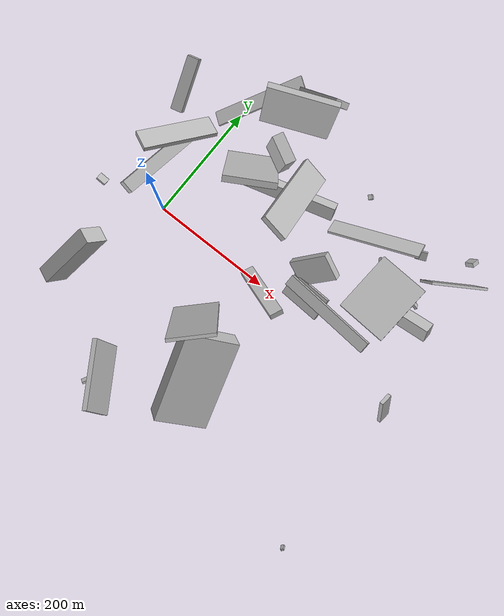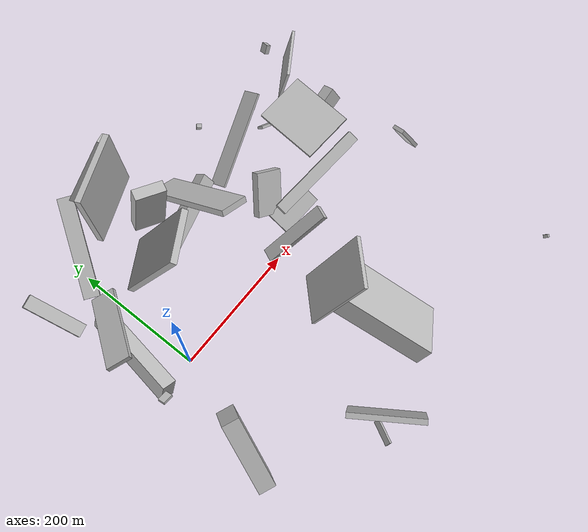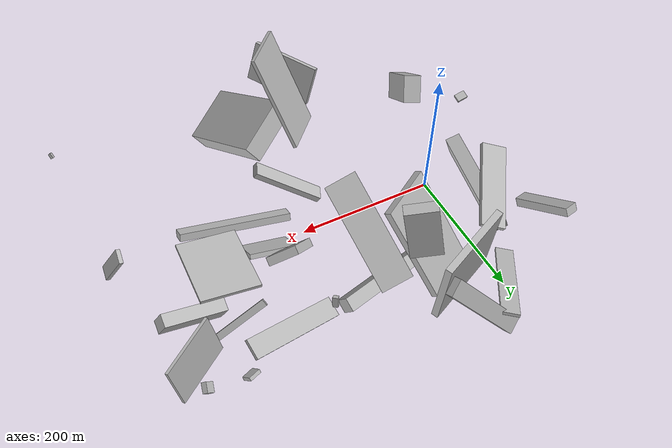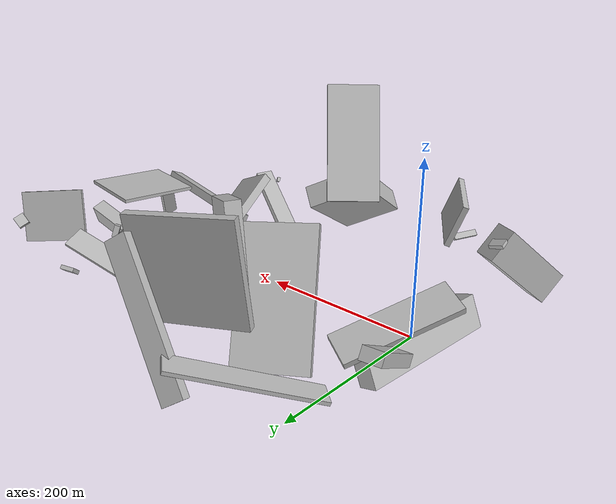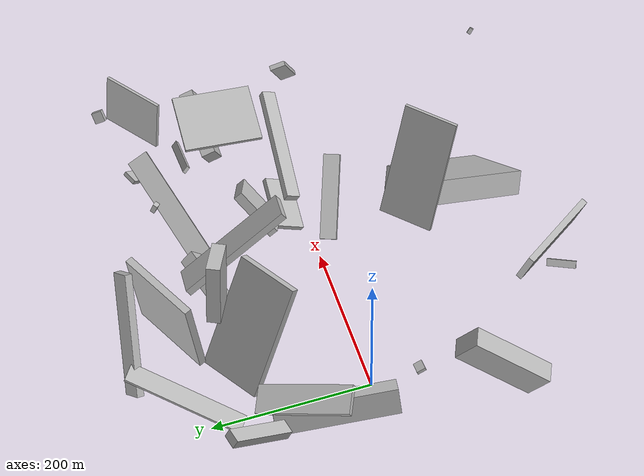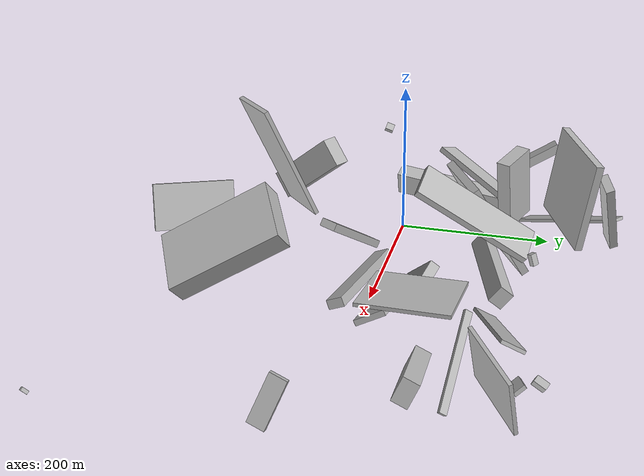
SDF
<sdf version="1.6">
 <world name="default">
  <scene>
   <sky><clouds><speed>12</speed></clouds></sky>
   <ambient>0.4 0.4 0.4 1</ambient>
   <background>0.7 0.7 0.7 1</background>
   <shadows>1</shadows>
  </scene>
  <gravity>0 0 -9.8066</gravity>
  <magnetic_field>6e-06 2.3e-05 -4.2e-05</magnetic_field>
  <physics default="0" name="default_physics" type="ode">
   <ode>
    <solver>
     <type>quick</type>
     <iters>10</iters>
     <sor>1.0</sor>
     <use_dynamic_moi_rescaling>0</use_dynamic_moi_rescaling>
    </solver>
    <constraints>
     <cfm>0</cfm>
     <erp>0.2</erp>
     <contact_max_correcting_vel>100</contact_max_correcting_vel>
     <contact_surface_layer>0.001</contact_surface_layer>
    </constraints>
   </ode>
   <max_step_size>0.004</max_step_size>
   <real_time_factor>1</real_time_factor>
   <real_time_update_rate>250</real_time_update_rate>
  </physics>
  <light name="sun" type="directional">
   <pose>0 0 10 0 0 0</pose>
   <diffuse>0.8 0.8 0.8 1</diffuse>
   <specular>0.2 0.2 0.2 1</specular>
   <attenuation>
    <range>1000</range>
    <constant>0.9</constant>
    <linear>0.01</linear>
    <quadratic>0.001</quadratic>
   </attenuation>
   <direction>-0.5 0.1 -0.9</direction>
  </light>
  <model name="building_1">
   <static>0</static>
   <pose>154.57961220058755 -94.06725495758079 95.15342678860934 -0.02446657024979351 -0.40464399634912657 2.36842992189644</pose>
   <link name="link">
    <gravity>0</gravity>
    <pose>0 0 75.0 0 0 0</pose>
    <collision name="collision"><geometry><box><size>5 67 150</size></box></geometry></collision>
    <visual name="visual">
     <cast_shadows>0</cast_shadows>
     <geometry><box><size>5 67 150</size></box></geometry>
     <material>
      <script>
       <uri>model://HANNAS_wall/materials/scripts</uri>
       <uri>model://HANNAS_wall/materials/textures</uri>
       <name>vrc/HANNAS_wall</name>
      </script>
     </material>
    </visual>
   </link>
  </model>
  <model name="building_2">
   <static>0</static>
   <pose>47.32997546945609 103.86689603071797 68.84116946585718 -1.6716091815767018 -1.0135630304492529 -0.9503787858345434</pose>
   <link name="link">
    <gravity>0</gravity>
    <pose>0 0 41.0 0 0 0</pose>
    <collision name="collision"><geometry><box><size>150 10 82</size></box></geometry></collision>
    <visual name="visual">
     <cast_shadows>0</cast_shadows>
     <geometry><box><size>150 10 82</size></box></geometry>
     <material>
      <script>
       <uri>model://HANNAS_wall/materials/scripts</uri>
       <uri>model://HANNAS_wall/materials/textures</uri>
       <name>vrc/HANNAS_wall</name>
      </script>
     </material>
    </visual>
   </link>
  </model>
  <model name="building_3">
   <static>0</static>
   <pose>10.635347362596743 231.09175881621837 46.46821976635276 1.346070181141134 1.2157926899558067 0.7201144404870884</pose>
   <link name="link">
    <gravity>0</gravity>
    <pose>0 0 12.0 0 0 0</pose>
    <collision name="collision"><geometry><box><size>4 150 24</size></box></geometry></collision>
    <visual name="visual">
     <cast_shadows>0</cast_shadows>
     <geometry><box><size>4 150 24</size></box></geometry>
     <material>
      <script>
       <uri>model://HANNAS_wall/materials/scripts</uri>
       <uri>model://HANNAS_wall/materials/textures</uri>
       <name>vrc/HANNAS_wall</name>
      </script>
     </material>
    </visual>
   </link>
  </model>
  <model name="building_4">
   <static>0</static>
   <pose>362.4458641789554 88.95825450980507 36.82298995859188 -0.982253996204171 1.091995442060551 -0.992013604563971</pose>
   <link name="link">
    <gravity>0</gravity>
    <pose>0 0 44.0 0 0 0</pose>
    <collision name="collision"><geometry><box><size>27 18 88</size></box></geometry></collision>
    <visual name="visual">
     <cast_shadows>0</cast_shadows>
     <geometry><box><size>27 18 88</size></box></geometry>
     <material>
      <script>
       <uri>model://HANNAS_wall/materials/scripts</uri>
       <uri>model://HANNAS_wall/materials/textures</uri>
       <name>vrc/HANNAS_wall</name>
      </script>
     </material>
    </visual>
   </link>
  </model>
  <model name="building_5">
   <static>0</static>
   <pose>176.34413313373253 -3.2184410953064457 65.48989069351684 0.1260634206152563 -0.9654327686301827 2.6182376185952894</pose>
   <link name="link">
    <gravity>0</gravity>
    <pose>0 0 51.5 0 0 0</pose>
    <collision name="collision"><geometry><box><size>9 20 103</size></box></geometry></collision>
    <visual name="visual">
     <cast_shadows>0</cast_shadows>
     <geometry><box><size>9 20 103</size></box></geometry>
     <material>
      <script>
       <uri>model://HANNAS_wall/materials/scripts</uri>
       <uri>model://HANNAS_wall/materials/textures</uri>
       <name>vrc/HANNAS_wall</name>
      </script>
     </material>
    </visual>
   </link>
  </model>
  <model name="building_6">
   <static>0</static>
   <pose>270.9579200867172 56.55891604592384 48.19919294720236 0.9200672776716683 -0.6340914589169215 -1.5207445167480622</pose>
   <link name="link">
    <gravity>0</gravity>
    <pose>0 0 21.5 0 0 0</pose>
    <collision name="collision"><geometry><box><size>12 66 43</size></box></geometry></collision>
    <visual name="visual">
     <cast_shadows>0</cast_shadows>
     <geometry><box><size>12 66 43</size></box></geometry>
     <material>
      <script>
       <uri>model://HANNAS_wall/materials/scripts</uri>
       <uri>model://HANNAS_wall/materials/textures</uri>
       <name>vrc/HANNAS_wall</name>
      </script>
     </material>
    </visual>
   </link>
  </model>
  <model name="building_7">
   <static>0</static>
   <pose>223.86409613722617 -181.42745742873035 75.65368777284878 2.587069124219425 -0.43186653503704486 -2.631040540996471</pose>
   <link name="link">
    <gravity>0</gravity>
    <pose>0 0 15.0 0 0 0</pose>
    <collision name="collision"><geometry><box><size>83 150 30</size></box></geometry></collision>
    <visual name="visual">
     <cast_shadows>0</cast_shadows>
     <geometry><box><size>83 150 30</size></box></geometry>
     <material>
      <script>
       <uri>model://HANNAS_wall/materials/scripts</uri>
       <uri>model://HANNAS_wall/materials/textures</uri>
       <name>vrc/HANNAS_wall</name>
      </script>
     </material>
    </visual>
   </link>
  </model>
  <model name="building_8">
   <static>0</static>
   <pose>74.04023205447574 -220.36553772407336 45.33069076595045 -1.3217290832869124 -1.230883910111086 -2.8038099439291084</pose>
   <link name="link">
    <gravity>0</gravity>
    <pose>0 0 53.5 0 0 0</pose>
    <collision name="collision"><geometry><box><size>62 8 107</size></box></geometry></collision>
    <visual name="visual">
     <cast_shadows>0</cast_shadows>
     <geometry><box><size>62 8 107</size></box></geometry>
     <material>
      <script>
       <uri>model://HANNAS_wall/materials/scripts</uri>
       <uri>model://HANNAS_wall/materials/textures</uri>
       <name>vrc/HANNAS_wall</name>
      </script>
     </material>
    </visual>
   </link>
  </model>
  <model name="building_9">
   <static>0</static>
   <pose>-75.65392492283846 -35.22446271739301 120.21720723079696 1.8265433209804183 0.3369510693594737 1.6465286733468518</pose>
   <link name="link">
    <gravity>0</gravity>
    <pose>0 0 7.5 0 0 0</pose>
    <collision name="collision"><geometry><box><size>11 4 15</size></box></geometry></collision>
    <visual name="visual">
     <cast_shadows>0</cast_shadows>
     <geometry><box><size>11 4 15</size></box></geometry>
     <material>
      <script>
       <uri>model://HANNAS_wall/materials/scripts</uri>
       <uri>model://HANNAS_wall/materials/textures</uri>
       <name>vrc/HANNAS_wall</name>
      </script>
     </material>
    </visual>
   </link>
  </model>
  <model name="building_10">
   <static>0</static>
   <pose>-54.99600769533757 -15.444318368351624 47.92513267574091 -1.7833674923705325 -1.2021916366851797 0.05061131252049151</pose>
   <link name="link">
    <gravity>0</gravity>
    <pose>0 0 75.0 0 0 0</pose>
    <collision name="collision"><geometry><box><size>35 21 150</size></box></geometry></collision>
    <visual name="visual">
     <cast_shadows>0</cast_shadows>
     <geometry><box><size>35 21 150</size></box></geometry>
     <material>
      <script>
       <uri>model://HANNAS_wall/materials/scripts</uri>
       <uri>model://HANNAS_wall/materials/textures</uri>
       <name>vrc/HANNAS_wall</name>
      </script>
     </material>
    </visual>
   </link>
  </model>
  <model name="building_11">
   <static>0</static>
   <pose>105.92758071751587 158.71607542926768 83.87657966501988 -0.18217599819959662 -0.009889995388662063 -2.026763269211537</pose>
   <link name="link">
    <gravity>0</gravity>
    <pose>0 0 43.5 0 0 0</pose>
    <collision name="collision"><geometry><box><size>17 44 87</size></box></geometry></collision>
    <visual name="visual">
     <cast_shadows>0</cast_shadows>
     <geometry><box><size>17 44 87</size></box></geometry>
     <material>
      <script>
       <uri>model://HANNAS_wall/materials/scripts</uri>
       <uri>model://HANNAS_wall/materials/textures</uri>
       <name>vrc/HANNAS_wall</name>
      </script>
     </material>
    </visual>
   </link>
  </model>
  <model name="building_12">
   <static>0</static>
   <pose>295.7787389260978 174.1886690373078 38.582482878908614 0.6634058859900273 0.9884166976235981 -0.6909647135999201</pose>
   <link name="link">
    <gravity>0</gravity>
    <pose>0 0 13.5 0 0 0</pose>
    <collision name="collision"><geometry><box><size>4 150 27</size></box></geometry></collision>
    <visual name="visual">
     <cast_shadows>0</cast_shadows>
     <geometry><box><size>4 150 27</size></box></geometry>
     <material>
      <script>
       <uri>model://HANNAS_wall/materials/scripts</uri>
       <uri>model://HANNAS_wall/materials/textures</uri>
       <name>vrc/HANNAS_wall</name>
      </script>
     </material>
    </visual>
   </link>
  </model>
  <model name="building_13">
   <static>0</static>
   <pose>366.16535005793054 131.08609397074574 43.080912206290385 -0.8010710364347841 -0.6076892945352024 3.0363692820891086</pose>
   <link name="link">
    <gravity>0</gravity>
    <pose>0 0 4.5 0 0 0</pose>
    <collision name="collision"><geometry><box><size>111 4 9</size></box></geometry></collision>
    <visual name="visual">
     <cast_shadows>0</cast_shadows>
     <geometry><box><size>111 4 9</size></box></geometry>
     <material>
      <script>
       <uri>model://HANNAS_wall/materials/scripts</uri>
       <uri>model://HANNAS_wall/materials/textures</uri>
       <name>vrc/HANNAS_wall</name>
      </script>
     </material>
    </visual>
   </link>
  </model>
  <model name="building_14">
   <static>0</static>
   <pose>-67.50403974645799 127.56258229965326 63.61306456163384 1.052325645523091 0.06382143718046954 -2.914746072005602</pose>
   <link name="link">
    <gravity>0</gravity>
    <pose>0 0 42.5 0 0 0</pose>
    <collision name="collision"><geometry><box><size>19 12 85</size></box></geometry></collision>
    <visual name="visual">
     <cast_shadows>0</cast_shadows>
     <geometry><box><size>19 12 85</size></box></geometry>
     <material>
      <script>
       <uri>model://HANNAS_wall/materials/scripts</uri>
       <uri>model://HANNAS_wall/materials/textures</uri>
       <name>vrc/HANNAS_wall</name>
      </script>
     </material>
    </visual>
   </link>
  </model>
  <model name="building_15">
   <static>0</static>
   <pose>356.7548277396835 32.75176331986692 110.67789941982055 -1.1123461763497537 1.4736643303599013 0.38721506882490486</pose>
   <link name="link">
    <gravity>0</gravity>
    <pose>0 0 48.0 0 0 0</pose>
    <collision name="collision"><geometry><box><size>4 78 96</size></box></geometry></collision>
    <visual name="visual">
     <cast_shadows>0</cast_shadows>
     <geometry><box><size>4 78 96</size></box></geometry>
     <material>
      <script>
       <uri>model://HANNAS_wall/materials/scripts</uri>
       <uri>model://HANNAS_wall/materials/textures</uri>
       <name>vrc/HANNAS_wall</name>
      </script>
     </material>
    </visual>
   </link>
  </model>
  <model name="building_16">
   <static>0</static>
   <pose>-33.929331767574865 -105.90240606239175 89.31243178054049 3.0341791712199595 0.8897729874423181 1.0850657515624578</pose>
   <link name="link">
    <gravity>0</gravity>
    <pose>0 0 57.5 0 0 0</pose>
    <collision name="collision"><geometry><box><size>40 25 115</size></box></geometry></collision>
    <visual name="visual">
     <cast_shadows>0</cast_shadows>
     <geometry><box><size>40 25 115</size></box></geometry>
     <material>
      <script>
       <uri>model://HANNAS_wall/materials/scripts</uri>
       <uri>model://HANNAS_wall/materials/textures</uri>
       <name>vrc/HANNAS_wall</name>
      </script>
     </material>
    </visual>
   </link>
  </model>
  <model name="building_17">
   <static>0</static>
   <pose>236.2922626241213 23.65769513475604 83.67330868072324 1.4135410534022972 -0.39732018668808344 1.5336293381358574</pose>
   <link name="link">
    <gravity>0</gravity>
    <pose>0 0 75.0 0 0 0</pose>
    <collision name="collision"><geometry><box><size>17 10 150</size></box></geometry></collision>
    <visual name="visual">
     <cast_shadows>0</cast_shadows>
     <geometry><box><size>17 10 150</size></box></geometry>
     <material>
      <script>
       <uri>model://HANNAS_wall/materials/scripts</uri>
       <uri>model://HANNAS_wall/materials/textures</uri>
       <name>vrc/HANNAS_wall</name>
      </script>
     </material>
    </visual>
   </link>
  </model>
  <model name="building_18">
   <static>0</static>
   <pose>257.601024251245 192.28747785295602 110.60520550562057 2.75249934375146 -1.219630342820748 -1.9514063213191681</pose>
   <link name="link">
    <gravity>0</gravity>
    <pose>0 0 3.0 0 0 0</pose>
    <collision name="collision"><geometry><box><size>13 7 6</size></box></geometry></collision>
    <visual name="visual">
     <cast_shadows>0</cast_shadows>
     <geometry><box><size>13 7 6</size></box></geometry>
     <material>
      <script>
       <uri>model://HANNAS_wall/materials/scripts</uri>
       <uri>model://HANNAS_wall/materials/textures</uri>
       <name>vrc/HANNAS_wall</name>
      </script>
     </material>
    </visual>
   </link>
  </model>
  <model name="building_19">
   <static>0</static>
   <pose>424.92771007322267 173.8510139699848 45.61504191616382 -0.10071201954878209 0.2132984209026408 -1.0149163323602364</pose>
   <link name="link">
    <gravity>0</gravity>
    <pose>0 0 32.0 0 0 0</pose>
    <collision name="collision"><geometry><box><size>4 83 64</size></box></geometry></collision>
    <visual name="visual">
     <cast_shadows>0</cast_shadows>
     <geometry><box><size>4 83 64</size></box></geometry>
     <material>
      <script>
       <uri>model://HANNAS_wall/materials/scripts</uri>
       <uri>model://HANNAS_wall/materials/textures</uri>
       <name>vrc/HANNAS_wall</name>
      </script>
     </material>
    </visual>
   </link>
  </model>
  <model name="building_20">
   <static>0</static>
   <pose>150.80096492865798 131.58782098397236 39.184296319205174 2.2543821092991494 0.044570122707706064 -2.882208267546488</pose>
   <link name="link">
    <gravity>0</gravity>
    <pose>0 0 9.5 0 0 0</pose>
    <collision name="collision"><geometry><box><size>150 22 19</size></box></geometry></collision>
    <visual name="visual">
     <cast_shadows>0</cast_shadows>
     <geometry><box><size>150 22 19</size></box></geometry>
     <material>
      <script>
       <uri>model://HANNAS_wall/materials/scripts</uri>
       <uri>model://HANNAS_wall/materials/textures</uri>
       <name>vrc/HANNAS_wall</name>
      </script>
     </material>
    </visual>
   </link>
  </model>
  <model name="building_21">
   <static>0</static>
   <pose>366.4520104790843 195.0837685666932 31.80399578788215 2.9564112333060644 0.903574751846823 1.8258579109825135</pose>
   <link name="link">
    <gravity>0</gravity>
    <pose>0 0 7.0 0 0 0</pose>
    <collision name="collision"><geometry><box><size>5 18 14</size></box></geometry></collision>
    <visual name="visual">
     <cast_shadows>0</cast_shadows>
     <geometry><box><size>5 18 14</size></box></geometry>
     <material>
      <script>
       <uri>model://HANNAS_wall/materials/scripts</uri>
       <uri>model://HANNAS_wall/materials/textures</uri>
       <name>vrc/HANNAS_wall</name>
      </script>
     </material>
    </visual>
   </link>
  </model>
  <model name="building_22">
   <static>0</static>
   <pose>-41.46687521770244 97.73700572682878 75.54238248957259 2.785484171996749 -0.3176292865097792 -0.444057361159669</pose>
   <link name="link">
    <gravity>0</gravity>
    <pose>0 0 3.5 0 0 0</pose>
    <collision name="collision"><geometry><box><size>36 121 7</size></box></geometry></collision>
    <visual name="visual">
     <cast_shadows>0</cast_shadows>
     <geometry><box><size>36 121 7</size></box></geometry>
     <material>
      <script>
       <uri>model://HANNAS_wall/materials/scripts</uri>
       <uri>model://HANNAS_wall/materials/textures</uri>
       <name>vrc/HANNAS_wall</name>
      </script>
     </material>
    </visual>
   </link>
  </model>
  <model name="building_23">
   <static>0</static>
   <pose>189.95080358765418 115.69298620285059 105.2694430779692 1.1199799746236234 -0.5578255939048958 -1.4351574481135438</pose>
   <link name="link">
    <gravity>0</gravity>
    <pose>0 0 22.0 0 0 0</pose>
    <collision name="collision"><geometry><box><size>150 9 44</size></box></geometry></collision>
    <visual name="visual">
     <cast_shadows>0</cast_shadows>
     <geometry><box><size>150 9 44</size></box></geometry>
     <material>
      <script>
       <uri>model://HANNAS_wall/materials/scripts</uri>
       <uri>model://HANNAS_wall/materials/textures</uri>
       <name>vrc/HANNAS_wall</name>
      </script>
     </material>
    </visual>
   </link>
  </model>
  <model name="building_24">
   <static>0</static>
   <pose>437.4987787950228 213.831748325637 86.24141512698007 -2.524796856865299 0.4369447227789136 1.3178669025405898</pose>
   <link name="link">
    <gravity>0</gravity>
    <pose>0 0 7.0 0 0 0</pose>
    <collision name="collision"><geometry><box><size>13 7 14</size></box></geometry></collision>
    <visual name="visual">
     <cast_shadows>0</cast_shadows>
     <geometry><box><size>13 7 14</size></box></geometry>
     <material>
      <script>
       <uri>model://HANNAS_wall/materials/scripts</uri>
       <uri>model://HANNAS_wall/materials/textures</uri>
       <name>vrc/HANNAS_wall</name>
      </script>
     </material>
    </visual>
   </link>
  </model>
  <model name="building_25">
   <static>0</static>
   <pose>268.01942936580923 9.295837470188587 23.45560419942192 1.0575179507639372 0.17219297239228057 3.07034653915658</pose>
   <link name="link">
    <gravity>0</gravity>
    <pose>0 0 19.0 0 0 0</pose>
    <collision name="collision"><geometry><box><size>67 7 38</size></box></geometry></collision>
    <visual name="visual">
     <cast_shadows>0</cast_shadows>
     <geometry><box><size>67 7 38</size></box></geometry>
     <material>
      <script>
       <uri>model://HANNAS_wall/materials/scripts</uri>
       <uri>model://HANNAS_wall/materials/textures</uri>
       <name>vrc/HANNAS_wall</name>
      </script>
     </material>
    </visual>
   </link>
  </model>
  <model name="building_26">
   <static>0</static>
   <pose>104.14219730355364 273.92366046123306 90.63692472598642 0.9739111461150614 0.3496967559449604 -1.2915526213576025</pose>
   <link name="link">
    <gravity>0</gravity>
    <pose>0 0 11.5 0 0 0</pose>
    <collision name="collision"><geometry><box><size>10 150 23</size></box></geometry></collision>
    <visual name="visual">
     <cast_shadows>0</cast_shadows>
     <geometry><box><size>10 150 23</size></box></geometry>
     <material>
      <script>
       <uri>model://HANNAS_wall/materials/scripts</uri>
       <uri>model://HANNAS_wall/materials/textures</uri>
       <name>vrc/HANNAS_wall</name>
      </script>
     </material>
    </visual>
   </link>
  </model>
  <model name="building_27">
   <static>0</static>
   <pose>44.89007126358589 201.39279532241758 128.66857903183313 1.6442326642002005 0.1022517044894062 1.9911760379916548</pose>
   <link name="link">
    <gravity>0</gravity>
    <pose>0 0 54.0 0 0 0</pose>
    <collision name="collision"><geometry><box><size>9 109 108</size></box></geometry></collision>
    <visual name="visual">
     <cast_shadows>0</cast_shadows>
     <geometry><box><size>9 109 108</size></box></geometry>
     <material>
      <script>
       <uri>model://HANNAS_wall/materials/scripts</uri>
       <uri>model://HANNAS_wall/materials/textures</uri>
       <name>vrc/HANNAS_wall</name>
      </script>
     </material>
    </visual>
   </link>
  </model>
  <model name="building_28">
   <static>0</static>
   <pose>90.78414921556451 -275.6333297294005 18.138479405953735 -2.3806752587380795 0.0686288585192217 1.084310084043279</pose>
   <link name="link">
    <gravity>0</gravity>
    <pose>0 0 4.5 0 0 0</pose>
    <collision name="collision"><geometry><box><size>36 4 9</size></box></geometry></collision>
    <visual name="visual">
     <cast_shadows>0</cast_shadows>
     <geometry><box><size>36 4 9</size></box></geometry>
     <material>
      <script>
       <uri>model://HANNAS_wall/materials/scripts</uri>
       <uri>model://HANNAS_wall/materials/textures</uri>
       <name>vrc/HANNAS_wall</name>
      </script>
     </material>
    </visual>
   </link>
  </model>
  <model name="building_29">
   <static>0</static>
   <pose>473.0411621780272 -294.36562864515594 10.837968755009683 -0.9455011598815104 -0.8275299828465303 -1.1733757814977062</pose>
   <link name="link">
    <gravity>0</gravity>
    <pose>0 0 2.5 0 0 0</pose>
    <collision name="collision"><geometry><box><size>8 4 5</size></box></geometry></collision>
    <visual name="visual">
     <cast_shadows>0</cast_shadows>
     <geometry><box><size>8 4 5</size></box></geometry>
     <material>
      <script>
       <uri>model://HANNAS_wall/materials/scripts</uri>
       <uri>model://HANNAS_wall/materials/textures</uri>
       <name>vrc/HANNAS_wall</name>
      </script>
     </material>
    </visual>
   </link>
  </model>
  <model name="building_30">
   <static>0</static>
   <pose>463.8221039528432 -45.004457867673445 42.854262092869774 2.3124988634864088 -1.0649366150083535 2.3346372586248543</pose>
   <link name="link">
    <gravity>0</gravity>
    <pose>0 0 10.0 0 0 0</pose>
    <collision name="collision"><geometry><box><size>55 6 20</size></box></geometry></collision>
    <visual name="visual">
     <cast_shadows>0</cast_shadows>
     <geometry><box><size>55 6 20</size></box></geometry>
     <material>
      <script>
       <uri>model://HANNAS_wall/materials/scripts</uri>
       <uri>model://HANNAS_wall/materials/textures</uri>
       <name>vrc/HANNAS_wall</name>
      </script>
     </material>
    </visual>
   </link>
  </model>
 </world>
</sdf>
